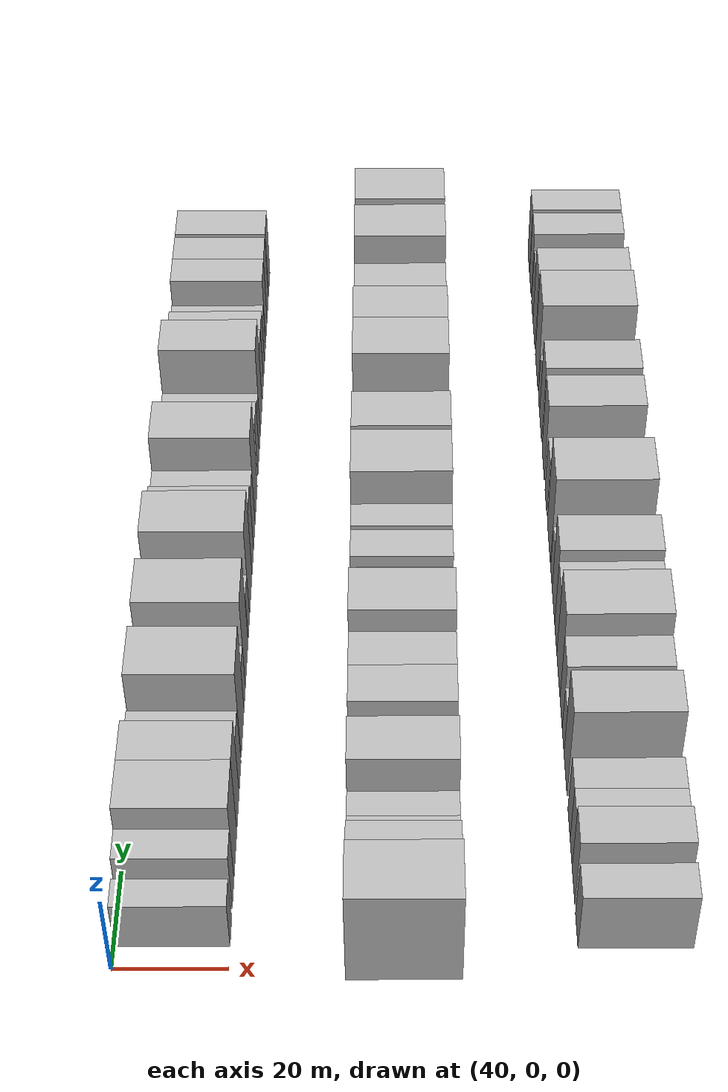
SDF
<sdf version="1.6">
 <world name="default">
  <model name="building_44">
   <static>1</static>
   <pose>50.0000 7.2947 0 0.000000 0.000000 0.000000</pose>
   <link name="link">
    <pose>0 0 6.00 0 0 0</pose>
    <collision name="collision"><geometry><box><size>20.0000 5.6856 12.0000</size></box></geometry></collision>
    <visual name="visual">
     <cast_shadows>0</cast_shadows>
     <geometry><box><size>20.0000 5.6856 12.0000</size></box></geometry>
     <material>
      <script>
       <uri>model://HANNAS_wall/materials/scripts</uri>
       <uri>model://HANNAS_wall/materials/textures</uri>
       <name>vrc/HANNAS_wall</name>
      </script>
     </material>
    </visual>
   </link>
  </model>
  <model name="building_45">
   <static>1</static>
   <pose>50.0000 15.2303 0 0.000000 0.000000 0.000000</pose>
   <link name="link">
    <pose>0 0 7.50 0 0 0</pose>
    <collision name="collision"><geometry><box><size>20.0000 6.1856 15.0000</size></box></geometry></collision>
    <visual name="visual">
     <cast_shadows>0</cast_shadows>
     <geometry><box><size>20.0000 6.1856 15.0000</size></box></geometry>
     <material>
      <script>
       <uri>model://HANNAS_wall/materials/scripts</uri>
       <uri>model://HANNAS_wall/materials/textures</uri>
       <name>vrc/HANNAS_wall</name>
      </script>
     </material>
    </visual>
   </link>
  </model>
  <model name="building_46">
   <static>1</static>
   <pose>50.0000 23.5147 0 0.000000 0.000000 0.000000</pose>
   <link name="link">
    <pose>0 0 10.50 0 0 0</pose>
    <collision name="collision"><geometry><box><size>20.0000 10.3832 21.0000</size></box></geometry></collision>
    <visual name="visual">
     <cast_shadows>0</cast_shadows>
     <geometry><box><size>20.0000 10.3832 21.0000</size></box></geometry>
     <material>
      <script>
       <uri>model://HANNAS_wall/materials/scripts</uri>
       <uri>model://HANNAS_wall/materials/textures</uri>
       <name>vrc/HANNAS_wall</name>
      </script>
     </material>
    </visual>
   </link>
  </model>
  <model name="building_47">
   <static>1</static>
   <pose>50.0000 33.0758 0 0.000000 0.000000 0.000000</pose>
   <link name="link">
    <pose>0 0 10.50 0 0 0</pose>
    <collision name="collision"><geometry><box><size>20.0000 8.7391 21.0000</size></box></geometry></collision>
    <visual name="visual">
     <cast_shadows>0</cast_shadows>
     <geometry><box><size>20.0000 8.7391 21.0000</size></box></geometry>
     <material>
      <script>
       <uri>model://HANNAS_wall/materials/scripts</uri>
       <uri>model://HANNAS_wall/materials/textures</uri>
       <name>vrc/HANNAS_wall</name>
      </script>
     </material>
    </visual>
   </link>
  </model>
  <model name="building_48">
   <static>1</static>
   <pose>50.0000 40.9782 0 0.000000 0.000000 0.000000</pose>
   <link name="link">
    <pose>0 0 7.50 0 0 0</pose>
    <collision name="collision"><geometry><box><size>20.0000 7.0657 15.0000</size></box></geometry></collision>
    <visual name="visual">
     <cast_shadows>0</cast_shadows>
     <geometry><box><size>20.0000 7.0657 15.0000</size></box></geometry>
     <material>
      <script>
       <uri>model://HANNAS_wall/materials/scripts</uri>
       <uri>model://HANNAS_wall/materials/textures</uri>
       <name>vrc/HANNAS_wall</name>
      </script>
     </material>
    </visual>
   </link>
  </model>
  <model name="building_49">
   <static>1</static>
   <pose>50.0000 51.2297 0 0.000000 0.000000 0.000000</pose>
   <link name="link">
    <pose>0 0 12.00 0 0 0</pose>
    <collision name="collision"><geometry><box><size>20.0000 11.4374 24.0000</size></box></geometry></collision>
    <visual name="visual">
     <cast_shadows>0</cast_shadows>
     <geometry><box><size>20.0000 11.4374 24.0000</size></box></geometry>
     <material>
      <script>
       <uri>model://HANNAS_wall/materials/scripts</uri>
       <uri>model://HANNAS_wall/materials/textures</uri>
       <name>vrc/HANNAS_wall</name>
      </script>
     </material>
    </visual>
   </link>
  </model>
  <model name="building_50">
   <static>1</static>
   <pose>50.0000 59.8406 0 0.000000 0.000000 0.000000</pose>
   <link name="link">
    <pose>0 0 6.00 0 0 0</pose>
    <collision name="collision"><geometry><box><size>20.0000 5.7842 12.0000</size></box></geometry></collision>
    <visual name="visual">
     <cast_shadows>0</cast_shadows>
     <geometry><box><size>20.0000 5.7842 12.0000</size></box></geometry>
     <material>
      <script>
       <uri>model://HANNAS_wall/materials/scripts</uri>
       <uri>model://HANNAS_wall/materials/textures</uri>
       <name>vrc/HANNAS_wall</name>
      </script>
     </material>
    </visual>
   </link>
  </model>
  <model name="building_51">
   <static>1</static>
   <pose>50.0000 68.3029 0 0.000000 0.000000 0.000000</pose>
   <link name="link">
    <pose>0 0 12.00 0 0 0</pose>
    <collision name="collision"><geometry><box><size>20.0000 11.1404 24.0000</size></box></geometry></collision>
    <visual name="visual">
     <cast_shadows>0</cast_shadows>
     <geometry><box><size>20.0000 11.1404 24.0000</size></box></geometry>
     <material>
      <script>
       <uri>model://HANNAS_wall/materials/scripts</uri>
       <uri>model://HANNAS_wall/materials/textures</uri>
       <name>vrc/HANNAS_wall</name>
      </script>
     </material>
    </visual>
   </link>
  </model>
  <model name="building_52">
   <static>1</static>
   <pose>50.0000 77.8305 0 0.000000 0.000000 0.000000</pose>
   <link name="link">
    <pose>0 0 6.00 0 0 0</pose>
    <collision name="collision"><geometry><box><size>20.0000 5.9150 12.0000</size></box></geometry></collision>
    <visual name="visual">
     <cast_shadows>0</cast_shadows>
     <geometry><box><size>20.0000 5.9150 12.0000</size></box></geometry>
     <material>
      <script>
       <uri>model://HANNAS_wall/materials/scripts</uri>
       <uri>model://HANNAS_wall/materials/textures</uri>
       <name>vrc/HANNAS_wall</name>
      </script>
     </material>
    </visual>
   </link>
  </model>
  <model name="building_53">
   <static>1</static>
   <pose>50.0000 86.2977 0 0.000000 0.000000 0.000000</pose>
   <link name="link">
    <pose>0 0 12.00 0 0 0</pose>
    <collision name="collision"><geometry><box><size>20.0000 11.0193 24.0000</size></box></geometry></collision>
    <visual name="visual">
     <cast_shadows>0</cast_shadows>
     <geometry><box><size>20.0000 11.0193 24.0000</size></box></geometry>
     <material>
      <script>
       <uri>model://HANNAS_wall/materials/scripts</uri>
       <uri>model://HANNAS_wall/materials/textures</uri>
       <name>vrc/HANNAS_wall</name>
      </script>
     </material>
    </visual>
   </link>
  </model>
  <model name="building_54">
   <static>1</static>
   <pose>50.0000 95.4237 0 0.000000 0.000000 0.000000</pose>
   <link name="link">
    <pose>0 0 9.00 0 0 0</pose>
    <collision name="collision"><geometry><box><size>20.0000 7.2327 18.0000</size></box></geometry></collision>
    <visual name="visual">
     <cast_shadows>0</cast_shadows>
     <geometry><box><size>20.0000 7.2327 18.0000</size></box></geometry>
     <material>
      <script>
       <uri>model://HANNAS_wall/materials/scripts</uri>
       <uri>model://HANNAS_wall/materials/textures</uri>
       <name>vrc/HANNAS_wall</name>
      </script>
     </material>
    </visual>
   </link>
  </model>
  <model name="building_55">
   <static>1</static>
   <pose>50.0000 102.7573 0 0.000000 0.000000 0.000000</pose>
   <link name="link">
    <pose>0 0 7.50 0 0 0</pose>
    <collision name="collision"><geometry><box><size>20.0000 7.4345 15.0000</size></box></geometry></collision>
    <visual name="visual">
     <cast_shadows>0</cast_shadows>
     <geometry><box><size>20.0000 7.4345 15.0000</size></box></geometry>
     <material>
      <script>
       <uri>model://HANNAS_wall/materials/scripts</uri>
       <uri>model://HANNAS_wall/materials/textures</uri>
       <name>vrc/HANNAS_wall</name>
      </script>
     </material>
    </visual>
   </link>
  </model>
  <model name="building_56">
   <static>1</static>
   <pose>50.0000 111.7318 0 0.000000 0.000000 0.000000</pose>
   <link name="link">
    <pose>0 0 12.00 0 0 0</pose>
    <collision name="collision"><geometry><box><size>20.0000 10.5145 24.0000</size></box></geometry></collision>
    <visual name="visual">
     <cast_shadows>0</cast_shadows>
     <geometry><box><size>20.0000 10.5145 24.0000</size></box></geometry>
     <material>
      <script>
       <uri>model://HANNAS_wall/materials/scripts</uri>
       <uri>model://HANNAS_wall/materials/textures</uri>
       <name>vrc/HANNAS_wall</name>
      </script>
     </material>
    </visual>
   </link>
  </model>
  <model name="building_57">
   <static>1</static>
   <pose>50.0000 123.3569 0 0.000000 0.000000 0.000000</pose>
   <link name="link">
    <pose>0 0 7.50 0 0 0</pose>
    <collision name="collision"><geometry><box><size>20.0000 6.7356 15.0000</size></box></geometry></collision>
    <visual name="visual">
     <cast_shadows>0</cast_shadows>
     <geometry><box><size>20.0000 6.7356 15.0000</size></box></geometry>
     <material>
      <script>
       <uri>model://HANNAS_wall/materials/scripts</uri>
       <uri>model://HANNAS_wall/materials/textures</uri>
       <name>vrc/HANNAS_wall</name>
      </script>
     </material>
    </visual>
   </link>
  </model>
  <model name="building_58">
   <static>1</static>
   <pose>50.0000 129.6857 0 0.000000 0.000000 0.000000</pose>
   <link name="link">
    <pose>0 0 6.00 0 0 0</pose>
    <collision name="collision"><geometry><box><size>20.0000 5.9221 12.0000</size></box></geometry></collision>
    <visual name="visual">
     <cast_shadows>0</cast_shadows>
     <geometry><box><size>20.0000 5.9221 12.0000</size></box></geometry>
     <material>
      <script>
       <uri>model://HANNAS_wall/materials/scripts</uri>
       <uri>model://HANNAS_wall/materials/textures</uri>
       <name>vrc/HANNAS_wall</name>
      </script>
     </material>
    </visual>
   </link>
  </model>
  <model name="building_59">
   <static>1</static>
   <pose>50.0000 137.4826 0 0.000000 0.000000 0.000000</pose>
   <link name="link">
    <pose>0 0 12.00 0 0 0</pose>
    <collision name="collision"><geometry><box><size>20.0000 9.6717 24.0000</size></box></geometry></collision>
    <visual name="visual">
     <cast_shadows>0</cast_shadows>
     <geometry><box><size>20.0000 9.6717 24.0000</size></box></geometry>
     <material>
      <script>
       <uri>model://HANNAS_wall/materials/scripts</uri>
       <uri>model://HANNAS_wall/materials/textures</uri>
       <name>vrc/HANNAS_wall</name>
      </script>
     </material>
    </visual>
   </link>
  </model>
  <model name="building_60">
   <static>1</static>
   <pose>50.0000 145.9568 0 0.000000 0.000000 0.000000</pose>
   <link name="link">
    <pose>0 0 7.50 0 0 0</pose>
    <collision name="collision"><geometry><box><size>20.0000 7.2768 15.0000</size></box></geometry></collision>
    <visual name="visual">
     <cast_shadows>0</cast_shadows>
     <geometry><box><size>20.0000 7.2768 15.0000</size></box></geometry>
     <material>
      <script>
       <uri>model://HANNAS_wall/materials/scripts</uri>
       <uri>model://HANNAS_wall/materials/textures</uri>
       <name>vrc/HANNAS_wall</name>
      </script>
     </material>
    </visual>
   </link>
  </model>
  <model name="building_61">
   <static>1</static>
   <pose>50.0000 152.5957 0 0.000000 0.000000 0.000000</pose>
   <link name="link">
    <pose>0 0 7.50 0 0 0</pose>
    <collision name="collision"><geometry><box><size>20.0000 6.0009 15.0000</size></box></geometry></collision>
    <visual name="visual">
     <cast_shadows>0</cast_shadows>
     <geometry><box><size>20.0000 6.0009 15.0000</size></box></geometry>
     <material>
      <script>
       <uri>model://HANNAS_wall/materials/scripts</uri>
       <uri>model://HANNAS_wall/materials/textures</uri>
       <name>vrc/HANNAS_wall</name>
      </script>
     </material>
    </visual>
   </link>
  </model>
  <model name="building_62">
   <static>1</static>
   <pose>50.0000 158.3481 0 0.000000 0.000000 0.000000</pose>
   <link name="link">
    <pose>0 0 6.00 0 0 0</pose>
    <collision name="collision"><geometry><box><size>20.0000 5.5038 12.0000</size></box></geometry></collision>
    <visual name="visual">
     <cast_shadows>0</cast_shadows>
     <geometry><box><size>20.0000 5.5038 12.0000</size></box></geometry>
     <material>
      <script>
       <uri>model://HANNAS_wall/materials/scripts</uri>
       <uri>model://HANNAS_wall/materials/textures</uri>
       <name>vrc/HANNAS_wall</name>
      </script>
     </material>
    </visual>
   </link>
  </model>
  <model name="building_63">
   <static>1</static>
   <pose>50.0000 165.9473 0 0.000000 0.000000 0.000000</pose>
   <link name="link">
    <pose>0 0 9.00 0 0 0</pose>
    <collision name="collision"><geometry><box><size>20.0000 7.6945 18.0000</size></box></geometry></collision>
    <visual name="visual">
     <cast_shadows>0</cast_shadows>
     <geometry><box><size>20.0000 7.6945 18.0000</size></box></geometry>
     <material>
      <script>
       <uri>model://HANNAS_wall/materials/scripts</uri>
       <uri>model://HANNAS_wall/materials/textures</uri>
       <name>vrc/HANNAS_wall</name>
      </script>
     </material>
    </visual>
   </link>
  </model>
  <model name="building_64">
   <static>1</static>
   <pose>50.0000 173.6227 0 0.000000 0.000000 0.000000</pose>
   <link name="link">
    <pose>0 0 9.00 0 0 0</pose>
    <collision name="collision"><geometry><box><size>20.0000 7.6564 18.0000</size></box></geometry></collision>
    <visual name="visual">
     <cast_shadows>0</cast_shadows>
     <geometry><box><size>20.0000 7.6564 18.0000</size></box></geometry>
     <material>
      <script>
       <uri>model://HANNAS_wall/materials/scripts</uri>
       <uri>model://HANNAS_wall/materials/textures</uri>
       <name>vrc/HANNAS_wall</name>
      </script>
     </material>
    </visual>
   </link>
  </model>
  <model name="building_65">
   <static>1</static>
   <pose>50.0000 182.6887 0 0.000000 0.000000 0.000000</pose>
   <link name="link">
    <pose>0 0 9.00 0 0 0</pose>
    <collision name="collision"><geometry><box><size>20.0000 8.4755 18.0000</size></box></geometry></collision>
    <visual name="visual">
     <cast_shadows>0</cast_shadows>
     <geometry><box><size>20.0000 8.4755 18.0000</size></box></geometry>
     <material>
      <script>
       <uri>model://HANNAS_wall/materials/scripts</uri>
       <uri>model://HANNAS_wall/materials/textures</uri>
       <name>vrc/HANNAS_wall</name>
      </script>
     </material>
    </visual>
   </link>
  </model>
  <model name="building_130">
   <static>1</static>
   <pose>90.0000 3.5922 0 0.000000 0.000000 0.000000</pose>
   <link name="link">
    <pose>0 0 12.00 0 0 0</pose>
    <collision name="collision"><geometry><box><size>20.0000 11.8470 24.0000</size></box></geometry></collision>
    <visual name="visual">
     <cast_shadows>0</cast_shadows>
     <geometry><box><size>20.0000 11.8470 24.0000</size></box></geometry>
     <material>
      <script>
       <uri>model://HANNAS_wall/materials/scripts</uri>
       <uri>model://HANNAS_wall/materials/textures</uri>
       <name>vrc/HANNAS_wall</name>
      </script>
     </material>
    </visual>
   </link>
  </model>
  <model name="building_131">
   <static>1</static>
   <pose>90.0000 13.6889 0 0.000000 0.000000 0.000000</pose>
   <link name="link">
    <pose>0 0 9.00 0 0 0</pose>
    <collision name="collision"><geometry><box><size>20.0000 8.3465 18.0000</size></box></geometry></collision>
    <visual name="visual">
     <cast_shadows>0</cast_shadows>
     <geometry><box><size>20.0000 8.3465 18.0000</size></box></geometry>
     <material>
      <script>
       <uri>model://HANNAS_wall/materials/scripts</uri>
       <uri>model://HANNAS_wall/materials/textures</uri>
       <name>vrc/HANNAS_wall</name>
      </script>
     </material>
    </visual>
   </link>
  </model>
  <model name="building_132">
   <static>1</static>
   <pose>90.0000 20.5549 0 0.000000 0.000000 0.000000</pose>
   <link name="link">
    <pose>0 0 6.00 0 0 0</pose>
    <collision name="collision"><geometry><box><size>20.0000 5.3854 12.0000</size></box></geometry></collision>
    <visual name="visual">
     <cast_shadows>0</cast_shadows>
     <geometry><box><size>20.0000 5.3854 12.0000</size></box></geometry>
     <material>
      <script>
       <uri>model://HANNAS_wall/materials/scripts</uri>
       <uri>model://HANNAS_wall/materials/textures</uri>
       <name>vrc/HANNAS_wall</name>
      </script>
     </material>
    </visual>
   </link>
  </model>
  <model name="building_133">
   <static>1</static>
   <pose>90.0000 25.9232 0 0.000000 0.000000 0.000000</pose>
   <link name="link">
    <pose>0 0 6.00 0 0 0</pose>
    <collision name="collision"><geometry><box><size>20.0000 5.3512 12.0000</size></box></geometry></collision>
    <visual name="visual">
     <cast_shadows>0</cast_shadows>
     <geometry><box><size>20.0000 5.3512 12.0000</size></box></geometry>
     <material>
      <script>
       <uri>model://HANNAS_wall/materials/scripts</uri>
       <uri>model://HANNAS_wall/materials/textures</uri>
       <name>vrc/HANNAS_wall</name>
      </script>
     </material>
    </visual>
   </link>
  </model>
  <model name="building_134">
   <static>1</static>
   <pose>90.0000 33.4685 0 0.000000 0.000000 0.000000</pose>
   <link name="link">
    <pose>0 0 10.50 0 0 0</pose>
    <collision name="collision"><geometry><box><size>20.0000 9.7394 21.0000</size></box></geometry></collision>
    <visual name="visual">
     <cast_shadows>0</cast_shadows>
     <geometry><box><size>20.0000 9.7394 21.0000</size></box></geometry>
     <material>
      <script>
       <uri>model://HANNAS_wall/materials/scripts</uri>
       <uri>model://HANNAS_wall/materials/textures</uri>
       <name>vrc/HANNAS_wall</name>
      </script>
     </material>
    </visual>
   </link>
  </model>
  <model name="building_135">
   <static>1</static>
   <pose>90.0000 41.2046 0 0.000000 0.000000 0.000000</pose>
   <link name="link">
    <pose>0 0 6.00 0 0 0</pose>
    <collision name="collision"><geometry><box><size>20.0000 5.7329 12.0000</size></box></geometry></collision>
    <visual name="visual">
     <cast_shadows>0</cast_shadows>
     <geometry><box><size>20.0000 5.7329 12.0000</size></box></geometry>
     <material>
      <script>
       <uri>model://HANNAS_wall/materials/scripts</uri>
       <uri>model://HANNAS_wall/materials/textures</uri>
       <name>vrc/HANNAS_wall</name>
      </script>
     </material>
    </visual>
   </link>
  </model>
  <model name="building_136">
   <static>1</static>
   <pose>90.0000 48.4119 0 0.000000 0.000000 0.000000</pose>
   <link name="link">
    <pose>0 0 9.00 0 0 0</pose>
    <collision name="collision"><geometry><box><size>20.0000 8.6818 18.0000</size></box></geometry></collision>
    <visual name="visual">
     <cast_shadows>0</cast_shadows>
     <geometry><box><size>20.0000 8.6818 18.0000</size></box></geometry>
     <material>
      <script>
       <uri>model://HANNAS_wall/materials/scripts</uri>
       <uri>model://HANNAS_wall/materials/textures</uri>
       <name>vrc/HANNAS_wall</name>
      </script>
     </material>
    </visual>
   </link>
  </model>
  <model name="building_137">
   <static>1</static>
   <pose>90.0000 56.7411 0 0.000000 0.000000 0.000000</pose>
   <link name="link">
    <pose>0 0 9.00 0 0 0</pose>
    <collision name="collision"><geometry><box><size>20.0000 7.9765 18.0000</size></box></geometry></collision>
    <visual name="visual">
     <cast_shadows>0</cast_shadows>
     <geometry><box><size>20.0000 7.9765 18.0000</size></box></geometry>
     <material>
      <script>
       <uri>model://HANNAS_wall/materials/scripts</uri>
       <uri>model://HANNAS_wall/materials/textures</uri>
       <name>vrc/HANNAS_wall</name>
      </script>
     </material>
    </visual>
   </link>
  </model>
  <model name="building_138">
   <static>1</static>
   <pose>90.0000 66.0150 0 0.000000 0.000000 0.000000</pose>
   <link name="link">
    <pose>0 0 12.00 0 0 0</pose>
    <collision name="collision"><geometry><box><size>20.0000 10.5714 24.0000</size></box></geometry></collision>
    <visual name="visual">
     <cast_shadows>0</cast_shadows>
     <geometry><box><size>20.0000 10.5714 24.0000</size></box></geometry>
     <material>
      <script>
       <uri>model://HANNAS_wall/materials/scripts</uri>
       <uri>model://HANNAS_wall/materials/textures</uri>
       <name>vrc/HANNAS_wall</name>
      </script>
     </material>
    </visual>
   </link>
  </model>
  <model name="building_139">
   <static>1</static>
   <pose>90.0000 74.0687 0 0.000000 0.000000 0.000000</pose>
   <link name="link">
    <pose>0 0 6.00 0 0 0</pose>
    <collision name="collision"><geometry><box><size>20.0000 5.5358 12.0000</size></box></geometry></collision>
    <visual name="visual">
     <cast_shadows>0</cast_shadows>
     <geometry><box><size>20.0000 5.5358 12.0000</size></box></geometry>
     <material>
      <script>
       <uri>model://HANNAS_wall/materials/scripts</uri>
       <uri>model://HANNAS_wall/materials/textures</uri>
       <name>vrc/HANNAS_wall</name>
      </script>
     </material>
    </visual>
   </link>
  </model>
  <model name="building_140">
   <static>1</static>
   <pose>90.0000 79.7453 0 0.000000 0.000000 0.000000</pose>
   <link name="link">
    <pose>0 0 6.00 0 0 0</pose>
    <collision name="collision"><geometry><box><size>20.0000 5.8174 12.0000</size></box></geometry></collision>
    <visual name="visual">
     <cast_shadows>0</cast_shadows>
     <geometry><box><size>20.0000 5.8174 12.0000</size></box></geometry>
     <material>
      <script>
       <uri>model://HANNAS_wall/materials/scripts</uri>
       <uri>model://HANNAS_wall/materials/textures</uri>
       <name>vrc/HANNAS_wall</name>
      </script>
     </material>
    </visual>
   </link>
  </model>
  <model name="building_141">
   <static>1</static>
   <pose>90.0000 86.2304 0 0.000000 0.000000 0.000000</pose>
   <link name="link">
    <pose>0 0 7.50 0 0 0</pose>
    <collision name="collision"><geometry><box><size>20.0000 7.1527 15.0000</size></box></geometry></collision>
    <visual name="visual">
     <cast_shadows>0</cast_shadows>
     <geometry><box><size>20.0000 7.1527 15.0000</size></box></geometry>
     <material>
      <script>
       <uri>model://HANNAS_wall/materials/scripts</uri>
       <uri>model://HANNAS_wall/materials/textures</uri>
       <name>vrc/HANNAS_wall</name>
      </script>
     </material>
    </visual>
   </link>
  </model>
  <model name="building_142">
   <static>1</static>
   <pose>90.0000 93.8562 0 0.000000 0.000000 0.000000</pose>
   <link name="link">
    <pose>0 0 7.50 0 0 0</pose>
    <collision name="collision"><geometry><box><size>20.0000 6.0991 15.0000</size></box></geometry></collision>
    <visual name="visual">
     <cast_shadows>0</cast_shadows>
     <geometry><box><size>20.0000 6.0991 15.0000</size></box></geometry>
     <material>
      <script>
       <uri>model://HANNAS_wall/materials/scripts</uri>
       <uri>model://HANNAS_wall/materials/textures</uri>
       <name>vrc/HANNAS_wall</name>
      </script>
     </material>
    </visual>
   </link>
  </model>
  <model name="building_143">
   <static>1</static>
   <pose>90.0000 102.8582 0 0.000000 0.000000 0.000000</pose>
   <link name="link">
    <pose>0 0 12.00 0 0 0</pose>
    <collision name="collision"><geometry><box><size>20.0000 11.9048 24.0000</size></box></geometry></collision>
    <visual name="visual">
     <cast_shadows>0</cast_shadows>
     <geometry><box><size>20.0000 11.9048 24.0000</size></box></geometry>
     <material>
      <script>
       <uri>model://HANNAS_wall/materials/scripts</uri>
       <uri>model://HANNAS_wall/materials/textures</uri>
       <name>vrc/HANNAS_wall</name>
      </script>
     </material>
    </visual>
   </link>
  </model>
  <model name="building_144">
   <static>1</static>
   <pose>90.0000 114.9163 0 0.000000 0.000000 0.000000</pose>
   <link name="link">
    <pose>0 0 12.00 0 0 0</pose>
    <collision name="collision"><geometry><box><size>20.0000 10.2116 24.0000</size></box></geometry></collision>
    <visual name="visual">
     <cast_shadows>0</cast_shadows>
     <geometry><box><size>20.0000 10.2116 24.0000</size></box></geometry>
     <material>
      <script>
       <uri>model://HANNAS_wall/materials/scripts</uri>
       <uri>model://HANNAS_wall/materials/textures</uri>
       <name>vrc/HANNAS_wall</name>
      </script>
     </material>
    </visual>
   </link>
  </model>
  <model name="building_145">
   <static>1</static>
   <pose>90.0000 122.8138 0 0.000000 0.000000 0.000000</pose>
   <link name="link">
    <pose>0 0 6.00 0 0 0</pose>
    <collision name="collision"><geometry><box><size>20.0000 5.5834 12.0000</size></box></geometry></collision>
    <visual name="visual">
     <cast_shadows>0</cast_shadows>
     <geometry><box><size>20.0000 5.5834 12.0000</size></box></geometry>
     <material>
      <script>
       <uri>model://HANNAS_wall/materials/scripts</uri>
       <uri>model://HANNAS_wall/materials/textures</uri>
       <name>vrc/HANNAS_wall</name>
      </script>
     </material>
    </visual>
   </link>
  </model>
  <model name="building_146">
   <static>1</static>
   <pose>90.0000 128.5415 0 0.000000 0.000000 0.000000</pose>
   <link name="link">
    <pose>0 0 6.00 0 0 0</pose>
    <collision name="collision"><geometry><box><size>20.0000 5.8720 12.0000</size></box></geometry></collision>
    <visual name="visual">
     <cast_shadows>0</cast_shadows>
     <geometry><box><size>20.0000 5.8720 12.0000</size></box></geometry>
     <material>
      <script>
       <uri>model://HANNAS_wall/materials/scripts</uri>
       <uri>model://HANNAS_wall/materials/textures</uri>
       <name>vrc/HANNAS_wall</name>
      </script>
     </material>
    </visual>
   </link>
  </model>
  <model name="building_147">
   <static>1</static>
   <pose>90.0000 137.2424 0 0.000000 0.000000 0.000000</pose>
   <link name="link">
    <pose>0 0 12.00 0 0 0</pose>
    <collision name="collision"><geometry><box><size>20.0000 11.5298 24.0000</size></box></geometry></collision>
    <visual name="visual">
     <cast_shadows>0</cast_shadows>
     <geometry><box><size>20.0000 11.5298 24.0000</size></box></geometry>
     <material>
      <script>
       <uri>model://HANNAS_wall/materials/scripts</uri>
       <uri>model://HANNAS_wall/materials/textures</uri>
       <name>vrc/HANNAS_wall</name>
      </script>
     </material>
    </visual>
   </link>
  </model>
  <model name="building_148">
   <static>1</static>
   <pose>90.0000 148.1084 0 0.000000 0.000000 0.000000</pose>
   <link name="link">
    <pose>0 0 12.00 0 0 0</pose>
    <collision name="collision"><geometry><box><size>20.0000 10.2023 24.0000</size></box></geometry></collision>
    <visual name="visual">
     <cast_shadows>0</cast_shadows>
     <geometry><box><size>20.0000 10.2023 24.0000</size></box></geometry>
     <material>
      <script>
       <uri>model://HANNAS_wall/materials/scripts</uri>
       <uri>model://HANNAS_wall/materials/textures</uri>
       <name>vrc/HANNAS_wall</name>
      </script>
     </material>
    </visual>
   </link>
  </model>
  <model name="building_149">
   <static>1</static>
   <pose>90.0000 156.7469 0 0.000000 0.000000 0.000000</pose>
   <link name="link">
    <pose>0 0 7.50 0 0 0</pose>
    <collision name="collision"><geometry><box><size>20.0000 7.0746 15.0000</size></box></geometry></collision>
    <visual name="visual">
     <cast_shadows>0</cast_shadows>
     <geometry><box><size>20.0000 7.0746 15.0000</size></box></geometry>
     <material>
      <script>
       <uri>model://HANNAS_wall/materials/scripts</uri>
       <uri>model://HANNAS_wall/materials/textures</uri>
       <name>vrc/HANNAS_wall</name>
      </script>
     </material>
    </visual>
   </link>
  </model>
  <model name="building_150">
   <static>1</static>
   <pose>90.0000 164.2326 0 0.000000 0.000000 0.000000</pose>
   <link name="link">
    <pose>0 0 9.00 0 0 0</pose>
    <collision name="collision"><geometry><box><size>20.0000 7.8969 18.0000</size></box></geometry></collision>
    <visual name="visual">
     <cast_shadows>0</cast_shadows>
     <geometry><box><size>20.0000 7.8969 18.0000</size></box></geometry>
     <material>
      <script>
       <uri>model://HANNAS_wall/materials/scripts</uri>
       <uri>model://HANNAS_wall/materials/textures</uri>
       <name>vrc/HANNAS_wall</name>
      </script>
     </material>
    </visual>
   </link>
  </model>
  <model name="building_151">
   <static>1</static>
   <pose>90.0000 175.7518 0 0.000000 0.000000 0.000000</pose>
   <link name="link">
    <pose>0 0 12.00 0 0 0</pose>
    <collision name="collision"><geometry><box><size>20.0000 11.1415 24.0000</size></box></geometry></collision>
    <visual name="visual">
     <cast_shadows>0</cast_shadows>
     <geometry><box><size>20.0000 11.1415 24.0000</size></box></geometry>
     <material>
      <script>
       <uri>model://HANNAS_wall/materials/scripts</uri>
       <uri>model://HANNAS_wall/materials/textures</uri>
       <name>vrc/HANNAS_wall</name>
      </script>
     </material>
    </visual>
   </link>
  </model>
  <model name="building_152">
   <static>1</static>
   <pose>90.0000 188.9071 0 0.000000 0.000000 0.000000</pose>
   <link name="link">
    <pose>0 0 12.00 0 0 0</pose>
    <collision name="collision"><geometry><box><size>20.0000 11.1691 24.0000</size></box></geometry></collision>
    <visual name="visual">
     <cast_shadows>0</cast_shadows>
     <geometry><box><size>20.0000 11.1691 24.0000</size></box></geometry>
     <material>
      <script>
       <uri>model://HANNAS_wall/materials/scripts</uri>
       <uri>model://HANNAS_wall/materials/textures</uri>
       <name>vrc/HANNAS_wall</name>
      </script>
     </material>
    </visual>
   </link>
  </model>
  <model name="building_220">
   <static>1</static>
   <pose>130.0000 7.3350 0 0.000000 0.000000 0.000000</pose>
   <link name="link">
    <pose>0 0 7.50 0 0 0</pose>
    <collision name="collision"><geometry><box><size>20.0000 7.1248 15.0000</size></box></geometry></collision>
    <visual name="visual">
     <cast_shadows>0</cast_shadows>
     <geometry><box><size>20.0000 7.1248 15.0000</size></box></geometry>
     <material>
      <script>
       <uri>model://HANNAS_wall/materials/scripts</uri>
       <uri>model://HANNAS_wall/materials/textures</uri>
       <name>vrc/HANNAS_wall</name>
      </script>
     </material>
    </visual>
   </link>
  </model>
  <model name="building_221">
   <static>1</static>
   <pose>130.0000 16.7568 0 0.000000 0.000000 0.000000</pose>
   <link name="link">
    <pose>0 0 9.00 0 0 0</pose>
    <collision name="collision"><geometry><box><size>20.0000 7.7189 18.0000</size></box></geometry></collision>
    <visual name="visual">
     <cast_shadows>0</cast_shadows>
     <geometry><box><size>20.0000 7.7189 18.0000</size></box></geometry>
     <material>
      <script>
       <uri>model://HANNAS_wall/materials/scripts</uri>
       <uri>model://HANNAS_wall/materials/textures</uri>
       <name>vrc/HANNAS_wall</name>
      </script>
     </material>
    </visual>
   </link>
  </model>
  <model name="building_222">
   <static>1</static>
   <pose>130.0000 23.6893 0 0.000000 0.000000 0.000000</pose>
   <link name="link">
    <pose>0 0 7.50 0 0 0</pose>
    <collision name="collision"><geometry><box><size>20.0000 6.1461 15.0000</size></box></geometry></collision>
    <visual name="visual">
     <cast_shadows>0</cast_shadows>
     <geometry><box><size>20.0000 6.1461 15.0000</size></box></geometry>
     <material>
      <script>
       <uri>model://HANNAS_wall/materials/scripts</uri>
       <uri>model://HANNAS_wall/materials/textures</uri>
       <name>vrc/HANNAS_wall</name>
      </script>
     </material>
    </visual>
   </link>
  </model>
  <model name="building_223">
   <static>1</static>
   <pose>130.0000 30.1479 0 0.000000 0.000000 0.000000</pose>
   <link name="link">
    <pose>0 0 7.50 0 0 0</pose>
    <collision name="collision"><geometry><box><size>20.0000 6.7710 15.0000</size></box></geometry></collision>
    <visual name="visual">
     <cast_shadows>0</cast_shadows>
     <geometry><box><size>20.0000 6.7710 15.0000</size></box></geometry>
     <material>
      <script>
       <uri>model://HANNAS_wall/materials/scripts</uri>
       <uri>model://HANNAS_wall/materials/textures</uri>
       <name>vrc/HANNAS_wall</name>
      </script>
     </material>
    </visual>
   </link>
  </model>
  <model name="building_224">
   <static>1</static>
   <pose>130.0000 41.3545 0 0.000000 0.000000 0.000000</pose>
   <link name="link">
    <pose>0 0 12.00 0 0 0</pose>
    <collision name="collision"><geometry><box><size>20.0000 9.6423 24.0000</size></box></geometry></collision>
    <visual name="visual">
     <cast_shadows>0</cast_shadows>
     <geometry><box><size>20.0000 9.6423 24.0000</size></box></geometry>
     <material>
      <script>
       <uri>model://HANNAS_wall/materials/scripts</uri>
       <uri>model://HANNAS_wall/materials/textures</uri>
       <name>vrc/HANNAS_wall</name>
      </script>
     </material>
    </visual>
   </link>
  </model>
  <model name="building_225">
   <static>1</static>
   <pose>130.0000 49.1238 0 0.000000 0.000000 0.000000</pose>
   <link name="link">
    <pose>0 0 6.00 0 0 0</pose>
    <collision name="collision"><geometry><box><size>20.0000 5.8962 12.0000</size></box></geometry></collision>
    <visual name="visual">
     <cast_shadows>0</cast_shadows>
     <geometry><box><size>20.0000 5.8962 12.0000</size></box></geometry>
     <material>
      <script>
       <uri>model://HANNAS_wall/materials/scripts</uri>
       <uri>model://HANNAS_wall/materials/textures</uri>
       <name>vrc/HANNAS_wall</name>
      </script>
     </material>
    </visual>
   </link>
  </model>
  <model name="building_226">
   <static>1</static>
   <pose>130.0000 55.8196 0 0.000000 0.000000 0.000000</pose>
   <link name="link">
    <pose>0 0 9.00 0 0 0</pose>
    <collision name="collision"><geometry><box><size>20.0000 7.4954 18.0000</size></box></geometry></collision>
    <visual name="visual">
     <cast_shadows>0</cast_shadows>
     <geometry><box><size>20.0000 7.4954 18.0000</size></box></geometry>
     <material>
      <script>
       <uri>model://HANNAS_wall/materials/scripts</uri>
       <uri>model://HANNAS_wall/materials/textures</uri>
       <name>vrc/HANNAS_wall</name>
      </script>
     </material>
    </visual>
   </link>
  </model>
  <model name="building_227">
   <static>1</static>
   <pose>130.0000 65.1142 0 0.000000 0.000000 0.000000</pose>
   <link name="link">
    <pose>0 0 12.00 0 0 0</pose>
    <collision name="collision"><geometry><box><size>20.0000 11.0938 24.0000</size></box></geometry></collision>
    <visual name="visual">
     <cast_shadows>0</cast_shadows>
     <geometry><box><size>20.0000 11.0938 24.0000</size></box></geometry>
     <material>
      <script>
       <uri>model://HANNAS_wall/materials/scripts</uri>
       <uri>model://HANNAS_wall/materials/textures</uri>
       <name>vrc/HANNAS_wall</name>
      </script>
     </material>
    </visual>
   </link>
  </model>
  <model name="building_228">
   <static>1</static>
   <pose>130.0000 74.5197 0 0.000000 0.000000 0.000000</pose>
   <link name="link">
    <pose>0 0 9.00 0 0 0</pose>
    <collision name="collision"><geometry><box><size>20.0000 7.7173 18.0000</size></box></geometry></collision>
    <visual name="visual">
     <cast_shadows>0</cast_shadows>
     <geometry><box><size>20.0000 7.7173 18.0000</size></box></geometry>
     <material>
      <script>
       <uri>model://HANNAS_wall/materials/scripts</uri>
       <uri>model://HANNAS_wall/materials/textures</uri>
       <name>vrc/HANNAS_wall</name>
      </script>
     </material>
    </visual>
   </link>
  </model>
  <model name="building_229">
   <static>1</static>
   <pose>130.0000 83.0823 0 0.000000 0.000000 0.000000</pose>
   <link name="link">
    <pose>0 0 10.50 0 0 0</pose>
    <collision name="collision"><geometry><box><size>20.0000 9.4080 21.0000</size></box></geometry></collision>
    <visual name="visual">
     <cast_shadows>0</cast_shadows>
     <geometry><box><size>20.0000 9.4080 21.0000</size></box></geometry>
     <material>
      <script>
       <uri>model://HANNAS_wall/materials/scripts</uri>
       <uri>model://HANNAS_wall/materials/textures</uri>
       <name>vrc/HANNAS_wall</name>
      </script>
     </material>
    </visual>
   </link>
  </model>
  <model name="building_230">
   <static>1</static>
   <pose>130.0000 90.6098 0 0.000000 0.000000 0.000000</pose>
   <link name="link">
    <pose>0 0 6.00 0 0 0</pose>
    <collision name="collision"><geometry><box><size>20.0000 5.6470 12.0000</size></box></geometry></collision>
    <visual name="visual">
     <cast_shadows>0</cast_shadows>
     <geometry><box><size>20.0000 5.6470 12.0000</size></box></geometry>
     <material>
      <script>
       <uri>model://HANNAS_wall/materials/scripts</uri>
       <uri>model://HANNAS_wall/materials/textures</uri>
       <name>vrc/HANNAS_wall</name>
      </script>
     </material>
    </visual>
   </link>
  </model>
  <model name="building_231">
   <static>1</static>
   <pose>130.0000 100.3706 0 0.000000 0.000000 0.000000</pose>
   <link name="link">
    <pose>0 0 12.00 0 0 0</pose>
    <collision name="collision"><geometry><box><size>20.0000 11.8746 24.0000</size></box></geometry></collision>
    <visual name="visual">
     <cast_shadows>0</cast_shadows>
     <geometry><box><size>20.0000 11.8746 24.0000</size></box></geometry>
     <material>
      <script>
       <uri>model://HANNAS_wall/materials/scripts</uri>
       <uri>model://HANNAS_wall/materials/textures</uri>
       <name>vrc/HANNAS_wall</name>
      </script>
     </material>
    </visual>
   </link>
  </model>
  <model name="building_232">
   <static>1</static>
   <pose>130.0000 112.0009 0 0.000000 0.000000 0.000000</pose>
   <link name="link">
    <pose>0 0 7.50 0 0 0</pose>
    <collision name="collision"><geometry><box><size>20.0000 7.3860 15.0000</size></box></geometry></collision>
    <visual name="visual">
     <cast_shadows>0</cast_shadows>
     <geometry><box><size>20.0000 7.3860 15.0000</size></box></geometry>
     <material>
      <script>
       <uri>model://HANNAS_wall/materials/scripts</uri>
       <uri>model://HANNAS_wall/materials/textures</uri>
       <name>vrc/HANNAS_wall</name>
      </script>
     </material>
    </visual>
   </link>
  </model>
  <model name="building_233">
   <static>1</static>
   <pose>130.0000 123.3923 0 0.000000 0.000000 0.000000</pose>
   <link name="link">
    <pose>0 0 10.50 0 0 0</pose>
    <collision name="collision"><geometry><box><size>20.0000 9.3968 21.0000</size></box></geometry></collision>
    <visual name="visual">
     <cast_shadows>0</cast_shadows>
     <geometry><box><size>20.0000 9.3968 21.0000</size></box></geometry>
     <material>
      <script>
       <uri>model://HANNAS_wall/materials/scripts</uri>
       <uri>model://HANNAS_wall/materials/textures</uri>
       <name>vrc/HANNAS_wall</name>
      </script>
     </material>
    </visual>
   </link>
  </model>
  <model name="building_234">
   <static>1</static>
   <pose>130.0000 134.5483 0 0.000000 0.000000 0.000000</pose>
   <link name="link">
    <pose>0 0 10.50 0 0 0</pose>
    <collision name="collision"><geometry><box><size>20.0000 8.9152 21.0000</size></box></geometry></collision>
    <visual name="visual">
     <cast_shadows>0</cast_shadows>
     <geometry><box><size>20.0000 8.9152 21.0000</size></box></geometry>
     <material>
      <script>
       <uri>model://HANNAS_wall/materials/scripts</uri>
       <uri>model://HANNAS_wall/materials/textures</uri>
       <name>vrc/HANNAS_wall</name>
      </script>
     </material>
    </visual>
   </link>
  </model>
  <model name="building_235">
   <static>1</static>
   <pose>130.0000 141.7044 0 0.000000 0.000000 0.000000</pose>
   <link name="link">
    <pose>0 0 6.00 0 0 0</pose>
    <collision name="collision"><geometry><box><size>20.0000 5.3971 12.0000</size></box></geometry></collision>
    <visual name="visual">
     <cast_shadows>0</cast_shadows>
     <geometry><box><size>20.0000 5.3971 12.0000</size></box></geometry>
     <material>
      <script>
       <uri>model://HANNAS_wall/materials/scripts</uri>
       <uri>model://HANNAS_wall/materials/textures</uri>
       <name>vrc/HANNAS_wall</name>
      </script>
     </material>
    </visual>
   </link>
  </model>
  <model name="building_236">
   <static>1</static>
   <pose>130.0000 152.2839 0 0.000000 0.000000 0.000000</pose>
   <link name="link">
    <pose>0 0 12.00 0 0 0</pose>
    <collision name="collision"><geometry><box><size>20.0000 11.7619 24.0000</size></box></geometry></collision>
    <visual name="visual">
     <cast_shadows>0</cast_shadows>
     <geometry><box><size>20.0000 11.7619 24.0000</size></box></geometry>
     <material>
      <script>
       <uri>model://HANNAS_wall/materials/scripts</uri>
       <uri>model://HANNAS_wall/materials/textures</uri>
       <name>vrc/HANNAS_wall</name>
      </script>
     </material>
    </visual>
   </link>
  </model>
  <model name="building_237">
   <static>1</static>
   <pose>130.0000 164.9083 0 0.000000 0.000000 0.000000</pose>
   <link name="link">
    <pose>0 0 10.50 0 0 0</pose>
    <collision name="collision"><geometry><box><size>20.0000 9.4867 21.0000</size></box></geometry></collision>
    <visual name="visual">
     <cast_shadows>0</cast_shadows>
     <geometry><box><size>20.0000 9.4867 21.0000</size></box></geometry>
     <material>
      <script>
       <uri>model://HANNAS_wall/materials/scripts</uri>
       <uri>model://HANNAS_wall/materials/textures</uri>
       <name>vrc/HANNAS_wall</name>
      </script>
     </material>
    </visual>
   </link>
  </model>
  <model name="building_238">
   <static>1</static>
   <pose>130.0000 172.9164 0 0.000000 0.000000 0.000000</pose>
   <link name="link">
    <pose>0 0 7.50 0 0 0</pose>
    <collision name="collision"><geometry><box><size>20.0000 6.5295 15.0000</size></box></geometry></collision>
    <visual name="visual">
     <cast_shadows>0</cast_shadows>
     <geometry><box><size>20.0000 6.5295 15.0000</size></box></geometry>
     <material>
      <script>
       <uri>model://HANNAS_wall/materials/scripts</uri>
       <uri>model://HANNAS_wall/materials/textures</uri>
       <name>vrc/HANNAS_wall</name>
      </script>
     </material>
    </visual>
   </link>
  </model>
  <model name="building_239">
   <static>1</static>
   <pose>130.0000 182.0438 0 0.000000 0.000000 0.000000</pose>
   <link name="link">
    <pose>0 0 9.00 0 0 0</pose>
    <collision name="collision"><geometry><box><size>20.0000 7.7254 18.0000</size></box></geometry></collision>
    <visual name="visual">
     <cast_shadows>0</cast_shadows>
     <geometry><box><size>20.0000 7.7254 18.0000</size></box></geometry>
     <material>
      <script>
       <uri>model://HANNAS_wall/materials/scripts</uri>
       <uri>model://HANNAS_wall/materials/textures</uri>
       <name>vrc/HANNAS_wall</name>
      </script>
     </material>
    </visual>
   </link>
  </model>
  <model name="building_240">
   <static>1</static>
   <pose>130.0000 190.6306 0 0.000000 0.000000 0.000000</pose>
   <link name="link">
    <pose>0 0 9.00 0 0 0</pose>
    <collision name="collision"><geometry><box><size>20.0000 7.4482 18.0000</size></box></geometry></collision>
    <visual name="visual">
     <cast_shadows>0</cast_shadows>
     <geometry><box><size>20.0000 7.4482 18.0000</size></box></geometry>
     <material>
      <script>
       <uri>model://HANNAS_wall/materials/scripts</uri>
       <uri>model://HANNAS_wall/materials/textures</uri>
       <name>vrc/HANNAS_wall</name>
      </script>
     </material>
    </visual>
   </link>
  </model>
 </world>
</sdf>
